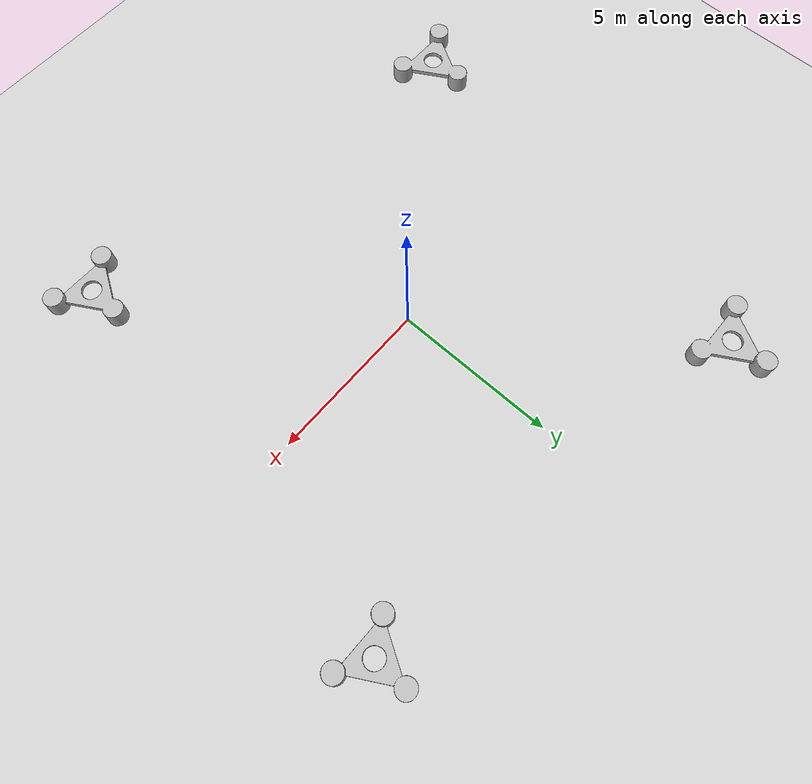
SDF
<sdf version="1.5">
 <world name="my_world">
  <include><uri>model://ground_plane</uri></include>
  <include><uri>model://sun</uri></include>
  <model name="Obstaculo_mov1">
   <pose>-5.5 7.5 0 0 0 0</pose>
   <static>false</static>
   <include><uri>model://obstaculo</uri></include>
   <plugin name="mov_plugin" filename="libmov_plugin.so">
    <velocity_x>0.1</velocity_x>
    <iterations>120000</iterations>
   </plugin>
  </model>
  <model name="Obstaculo_mov2">
   <pose>5.5 -7.5 0 0 0 0</pose>
   <static>false</static>
   <include><uri>model://obstaculo</uri></include>
   <plugin name="mov_plugin" filename="libmov_plugin.so">
    <velocity_x>-0.1</velocity_x>
    <iterations>120000</iterations>
   </plugin>
  </model>
  <model name="Obstaculo_mov3">
   <pose>7.5 5.5 0 0 0 0</pose>
   <static>false</static>
   <include><uri>model://obstaculo</uri></include>
   <plugin name="mov_plugin" filename="libmov_plugin.so">
    <velocity_y>-0.1</velocity_y>
    <iterations>120000</iterations>
   </plugin>
  </model>
  <model name="Obstaculo_mov4">
   <pose>-7.5 -5.5 0 0 0 0</pose>
   <static>false</static>
   <include><uri>model://obstaculo</uri></include>
   <plugin name="mov_plugin" filename="libmov_plugin.so">
    <velocity_y>0.1</velocity_y>
    <iterations>120000</iterations>
   </plugin>
  </model>
 </world>
</sdf>

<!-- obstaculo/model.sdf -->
<sdf version="1.4">
  <model name="obstaculo">
    <pose>0 0 0 0 0 0</pose>
    <static>false</static>
    <link name="link">
      <inertial>
        <mass>1.0</mass>
        <inertia>
          <ixx>0.083</ixx>
          <ixy>0.0</ixy>
          <ixz>0.0</ixz>
          <iyy>0.083</iyy>
          <iyz>0.0</iyz>
          <izz>0.083</izz>
        </inertia>
      </inertial>
      <collision name="collision">
        <pose>-1.209 -0.825 0 0 0 0</pose>
        <geometry>
          <mesh>
            <uri>model://obstaculo/meshes/Obstaculo.STL</uri>
          </mesh>
        </geometry>
      </collision>
      <visual name="visual">
        <pose>-1.209 -0.825 0 0 0 0</pose>
        <geometry>
          <mesh>
            <uri>model://obstaculo/meshes/Obstaculo.STL</uri>
          </mesh>
        </geometry>
      </visual>
    </link>
  </model>
</sdf>
